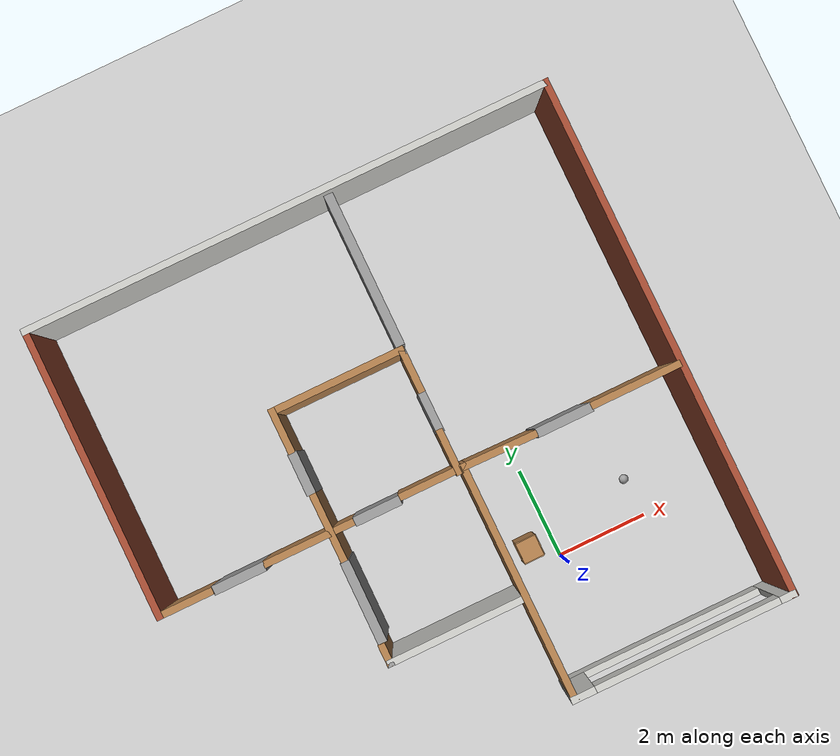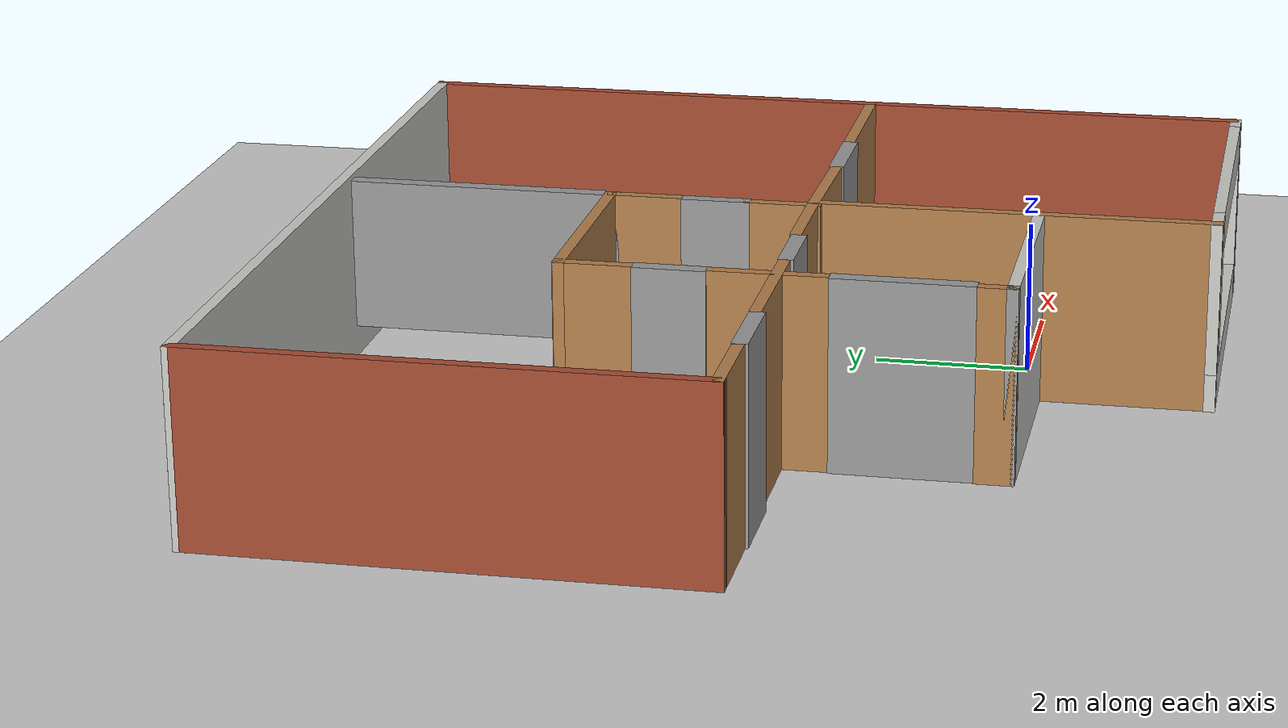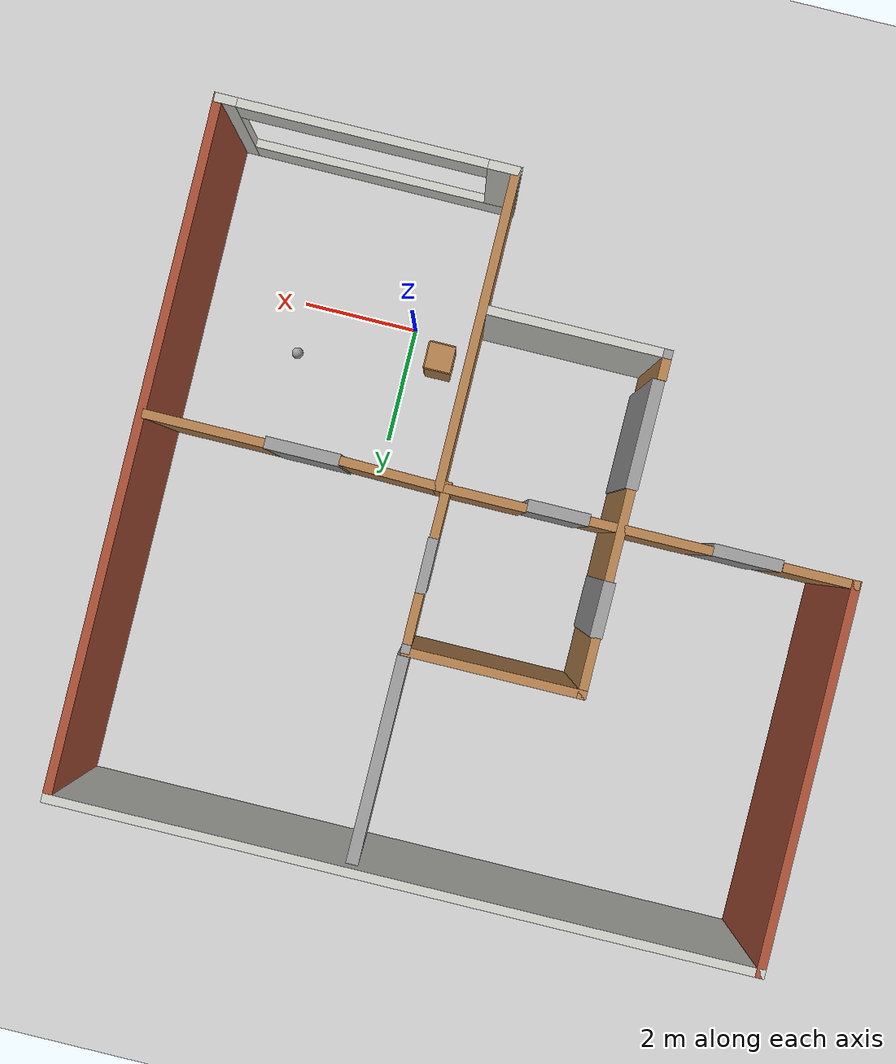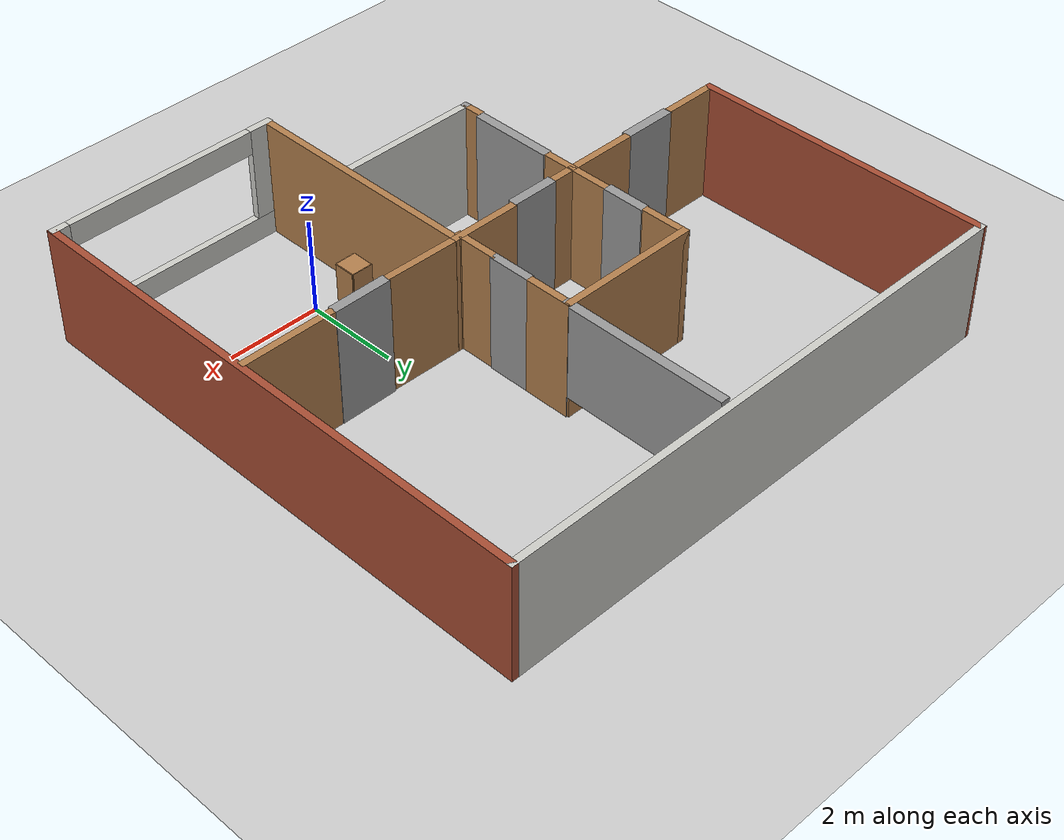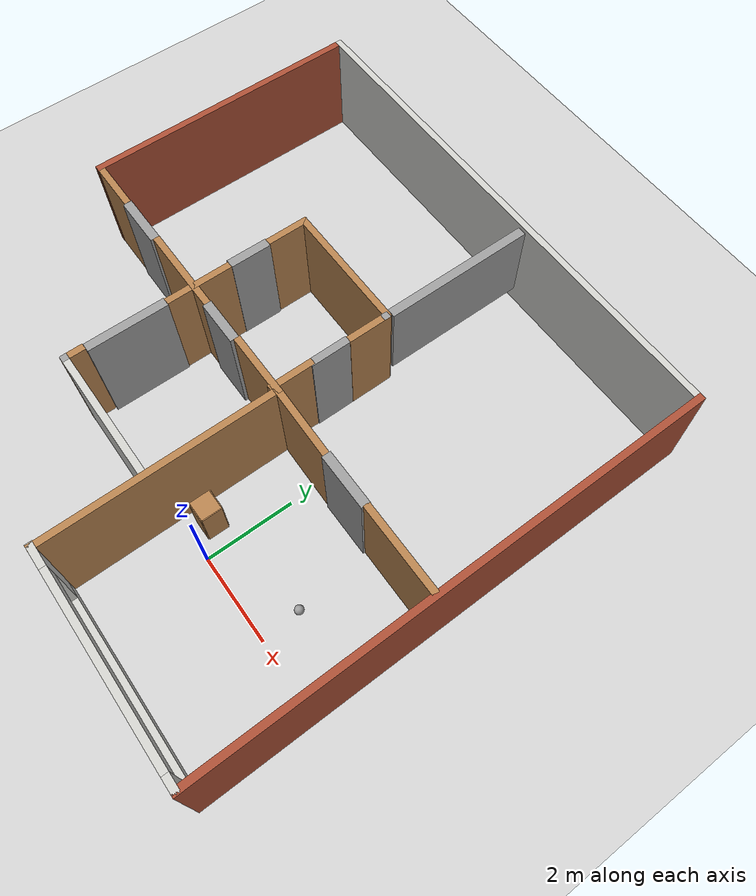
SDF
<sdf version="1.6">
 <world name="default">
  <light name="sun" type="directional">
   <pose>0 0 10 0 -0 0</pose>
   <diffuse>0.8 0.8 0.8 1</diffuse>
   <specular>0.2 0.2 0.2 1</specular>
   <attenuation>
    <range>1000</range>
    <constant>0.9</constant>
    <linear>0.01</linear>
    <quadratic>0.001</quadratic>
   </attenuation>
   <direction>-0.5 0.1 -0.9</direction>
  </light>
  <model name="ground_plane">
   <static>1</static>
   <link name="link">
    <collision name="collision">
     <geometry><plane><normal>0 0 1</normal><size>100 100</size></plane></geometry>
     <surface><friction><ode><mu>100</mu><mu2>50</mu2></ode></friction></surface>
    </collision>
    <visual name="visual">
     <cast_shadows>0</cast_shadows>
     <geometry><plane><normal>0 0 1</normal><size>100 100</size></plane></geometry>
     <material>
      <script><uri>file://media/materials/scripts/gazebo.material</uri><name>Gazebo/Grey</name></script>
     </material>
    </visual>
   </link>
  </model>
  <gravity>0 0 -9.8</gravity>
  <magnetic_field>6e-06 2.3e-05 -4.2e-05</magnetic_field>
  <atmosphere type="adiabatic"/>
  <physics name="default_physics" default="0" type="ode">
   <max_step_size>0.001</max_step_size>
   <real_time_factor>1</real_time_factor>
   <real_time_update_rate>1000</real_time_update_rate>
  </physics>
  <scene><ambient>0.4 0.4 0.4 1</ambient><background>0.7 0.7 0.7 1</background><shadows>1</shadows></scene>
  <spherical_coordinates>
   <surface_model>EARTH_WGS84</surface_model>
   <latitude_deg>0</latitude_deg>
   <longitude_deg>0</longitude_deg>
   <elevation>0</elevation>
   <heading_deg>0</heading_deg>
  </spherical_coordinates>
  <model name="home1">
   <pose>-2.0652 3.24147 0 0 -0 0</pose>
   <link name="Door_4">
    <collision name="Door_4_Collision">
     <geometry><box><size>1.227 0.2 2.5</size></box></geometry>
     <pose>0 0 1.25 0 -0 0</pose>
    </collision>
    <visual name="Door_4_Visual">
     <pose>0 0 1.25 0 -0 0</pose>
     <geometry><box><size>1.227 0.2 2.5</size></box></geometry>
     <material>
      <script><uri>file://media/materials/scripts/gazebo.material</uri><name>Gazebo/Grey</name></script>
     </material>
    </visual>
    <pose>3.18606 -0.587439 0 0 -0 0</pose>
   </link>
   <link name="Door_5">
    <collision name="Door_5_Collision">
     <geometry><box><size>1.786 0.2 2.5</size></box></geometry>
     <pose>0 0 1.25 0 -0 0</pose>
    </collision>
    <visual name="Door_5_Visual">
     <pose>0 0 1.25 0 -0 0</pose>
     <geometry><box><size>1.786 0.2 2.5</size></box></geometry>
     <material>
      <script><uri>file://media/materials/scripts/gazebo.material</uri><name>Gazebo/Grey</name></script>
     </material>
    </visual>
    <pose>-2.00622 -2.13043 0 0 0 -1.57582</pose>
   </link>
   <link name="Door_6">
    <collision name="Door_6_Collision">
     <geometry><box><size>0.921 0.2 2.5</size></box></geometry>
     <pose>0 0 1.25 0 -0 0</pose>
    </collision>
    <visual name="Door_6_Visual">
     <pose>0 0 1.25 0 -0 0</pose>
     <geometry><box><size>0.921 0.2 2.5</size></box></geometry>
     <material>
      <script><uri>file://media/materials/scripts/gazebo.material</uri><name>Gazebo/Grey</name></script>
     </material>
    </visual>
    <pose>-2.01467 0.717735 0 0 0 -1.57766</pose>
   </link>
   <link name="Door_7">
    <collision name="Door_7_Collision">
     <geometry><box><size>1.017 0.2 2.5</size></box></geometry>
     <pose>0 0 1.25 0 -0 0</pose>
    </collision>
    <visual name="Door_7_Visual">
     <pose>0 0 1.25 0 -0 0</pose>
     <geometry><box><size>1.017 0.2 2.5</size></box></geometry>
     <material>
      <script><uri>file://media/materials/scripts/gazebo.material</uri><name>Gazebo/Grey</name></script>
     </material>
    </visual>
    <pose>-0.973485 -0.608385 0 0 -0 0</pose>
   </link>
   <link name="Door_8">
    <collision name="Door_8_Collision">
     <geometry><box><size>0.9 0.17 2.5</size></box></geometry>
     <pose>0 0 1.25 0 -0 0</pose>
    </collision>
    <visual name="Door_8_Visual">
     <pose>0 0 1.25 0 -0 0</pose>
     <geometry><box><size>0.9 0.17 2.5</size></box></geometry>
     <material>
      <script><uri>file://media/materials/scripts/gazebo.material</uri><name>Gazebo/Grey</name></script>
     </material>
    </visual>
    <pose>0.846124 0.700588 0 0 -0 1.57428</pose>
   </link>
   <link name="Door_9">
    <collision name="Door_9_Collision">
     <geometry><box><size>1.14 0.2 2.5</size></box></geometry>
     <pose>0 0 1.25 0 -0 0</pose>
    </collision>
    <visual name="Door_9_Visual">
     <pose>0 0 1.25 0 -0 0</pose>
     <geometry><box><size>1.14 0.2 2.5</size></box></geometry>
     <material>
      <script><uri>file://media/materials/scripts/gazebo.material</uri><name>Gazebo/Grey</name></script>
     </material>
    </visual>
    <pose>-4.04114 -0.626154 0 0 -0 0</pose>
   </link>
   <link name="Wall_32">
    <collision name="Wall_32_Collision">
     <geometry><box><size>0.15 0.15 2.5</size></box></geometry>
     <pose>0 0 1.25 0 -0 0</pose>
    </collision>
    <visual name="Wall_32_Visual">
     <pose>0 0 1.25 0 -0 0</pose>
     <geometry><box><size>0.15 0.15 2.5</size></box></geometry>
     <material>
      <script><uri>file://media/materials/scripts/gazebo.material</uri><name>Gazebo/Grey</name></script>
      <ambient>1 1 1 1</ambient>
     </material>
     <meta><layer>0</layer></meta>
    </visual>
    <pose>0.857514 2.05405 0 0 -0 0</pose>
   </link>
   <link name="Wall_39">
    <collision name="Wall_39_Collision">
     <geometry><box><size>11.75 0.15 2.5</size></box></geometry>
     <pose>0 0 1.25 0 -0 0</pose>
    </collision>
    <visual name="Wall_39_Visual">
     <pose>0 0 1.25 0 -0 0</pose>
     <geometry><box><size>11.75 0.15 2.5</size></box></geometry>
     <material>
      <script><uri>file://media/materials/scripts/gazebo.material</uri><name>Gazebo/CeilingTiled</name></script>
      <ambient>1 1 1 1</ambient>
     </material>
     <meta><layer>0</layer></meta>
    </visual>
    <pose>0.007271 5.69142 0 0 -0 0</pose>
   </link>
   <link name="Wall_40">
    <collision name="Wall_40_Collision">
     <geometry><box><size>11.5328 0.15 2.5</size></box></geometry>
     <pose>0 0 1.25 0 -0 0</pose>
    </collision>
    <visual name="Wall_40_Visual">
     <pose>0 0 1.25 0 -0 0</pose>
     <geometry><box><size>11.5328 0.15 2.5</size></box></geometry>
     <material>
      <script><uri>file://media/materials/scripts/gazebo.material</uri><name>Gazebo/Bricks</name></script>
      <ambient>1 1 1 1</ambient>
     </material>
     <meta><layer>0</layer></meta>
    </visual>
    <pose>5.80727 7.7e-05 0 0 0 -1.5708</pose>
   </link>
   <link name="Wall_41">
    <pose>3.36593 -5.69126 0 0 -0 3.14159</pose>
    <visual name="Wall_41_Visual_0">
     <pose>-2.31849 0 1.25 0 -0 0</pose>
     <geometry><box><size>0.363017 0.15 2.5</size></box></geometry>
     <material>
      <script><uri>file://media/materials/scripts/gazebo.material</uri><name>Gazebo/CeilingTiled</name></script>
      <ambient>1 1 1 1</ambient>
     </material>
     <meta><layer>0</layer></meta>
    </visual>
    <collision name="Wall_41_Collision_0">
     <geometry><box><size>0.363017 0.15 2.5</size></box></geometry>
     <pose>-2.31849 0 1.25 0 -0 0</pose>
    </collision>
    <visual name="Wall_41_Visual_1">
     <pose>0.181509 0 0.25 0 -0 0</pose>
     <geometry><box><size>4.63698 0.15 0.5</size></box></geometry>
     <material>
      <script><uri>file://media/materials/scripts/gazebo.material</uri><name>Gazebo/CeilingTiled</name></script>
      <ambient>1 1 1 1</ambient>
     </material>
     <meta><layer>0</layer></meta>
    </visual>
    <collision name="Wall_41_Collision_1">
     <geometry><box><size>4.63698 0.15 0.5</size></box></geometry>
     <pose>0.181509 0 0.25 0 -0 0</pose>
    </collision>
    <visual name="Wall_41_Visual_2">
     <pose>2.22651 0 1.5 0 -0 0</pose>
     <geometry><box><size>0.546983 0.15 2</size></box></geometry>
     <material>
      <script><uri>file://media/materials/scripts/gazebo.material</uri><name>Gazebo/CeilingTiled</name></script>
      <ambient>1 1 1 1</ambient>
     </material>
     <meta><layer>0</layer></meta>
    </visual>
    <collision name="Wall_41_Collision_2">
     <geometry><box><size>0.546983 0.15 2</size></box></geometry>
     <pose>2.22651 0 1.5 0 -0 0</pose>
    </collision>
    <visual name="Wall_41_Visual_3">
     <pose>-0.091983 0 2.25 0 -0 0</pose>
     <geometry><box><size>4.09 0.15 0.5</size></box></geometry>
     <material>
      <script><uri>file://media/materials/scripts/gazebo.material</uri><name>Gazebo/CeilingTiled</name></script>
      <ambient>1 1 1 1</ambient>
     </material>
     <meta><layer>0</layer></meta>
    </visual>
    <collision name="Wall_41_Collision_3">
     <geometry><box><size>4.09 0.15 0.5</size></box></geometry>
     <pose>-0.091983 0 2.25 0 -0 0</pose>
    </collision>
   </link>
   <link name="Wall_43">
    <collision name="Wall_43_Collision">
     <geometry><box><size>5.28333 0.15 2.5</size></box></geometry>
     <pose>0 0 1.25 0 -0 0</pose>
    </collision>
    <visual name="Wall_43_Visual">
     <pose>0 0 1.25 0 -0 0</pose>
     <geometry><box><size>5.28333 0.15 2.5</size></box></geometry>
     <material>
      <script><uri>file://media/materials/scripts/gazebo.material</uri><name>Gazebo/Wood</name></script>
      <ambient>1 1 1 1</ambient>
     </material>
     <meta><layer>0</layer></meta>
    </visual>
    <pose>0.957271 -3.12492 0 0 -0 1.5708</pose>
   </link>
   <link name="Wall_45">
    <collision name="Wall_45_Collision">
     <geometry><box><size>2 0.15 2.5</size></box></geometry>
     <pose>0 0 1.25 0 -0 0</pose>
    </collision>
    <visual name="Wall_45_Visual">
     <pose>0 0 1.25 0 -0 0</pose>
     <geometry><box><size>2 0.15 2.5</size></box></geometry>
     <material>
      <script><uri>file://media/materials/scripts/gazebo.material</uri><name>Gazebo/Wood</name></script>
      <ambient>1 1 1 1</ambient>
     </material>
     <meta><layer>0</layer></meta>
    </visual>
    <pose>4.78492 -0.570515 0 0 -0 0</pose>
   </link>
   <link name="Wall_47">
    <collision name="Wall_47_Collision">
     <geometry><box><size>1.69896 0.15 2.5</size></box></geometry>
     <pose>0 0 1.25 0 -0 0</pose>
    </collision>
    <visual name="Wall_47_Visual">
     <pose>0 0 1.25 0 -0 0</pose>
     <geometry><box><size>1.69896 0.15 2.5</size></box></geometry>
     <material>
      <script><uri>file://media/materials/scripts/gazebo.material</uri><name>Gazebo/Wood</name></script>
      <ambient>1 1 1 1</ambient>
     </material>
     <meta><layer>0</layer></meta>
    </visual>
    <pose>1.73162 -0.572906 0 0 -0 3.1231</pose>
   </link>
   <link name="Wall_49">
    <collision name="Wall_49_Collision">
     <geometry><box><size>1.5 0.15 2.5</size></box></geometry>
     <pose>0 0 1.25 0 -0 0</pose>
    </collision>
    <visual name="Wall_49_Visual">
     <pose>0 0 1.25 0 -0 0</pose>
     <geometry><box><size>1.5 0.15 2.5</size></box></geometry>
     <material>
      <script><uri>file://media/materials/scripts/gazebo.material</uri><name>Gazebo/Wood</name></script>
      <ambient>1 1 1 1</ambient>
     </material>
     <meta><layer>0</layer></meta>
    </visual>
    <pose>0.282271 -0.558582 0 0 -0 3.14159</pose>
   </link>
   <link name="Wall_51">
    <collision name="Wall_51_Collision">
     <geometry><box><size>2 0.15 2.5</size></box></geometry>
     <pose>0 0 1.25 0 -0 0</pose>
    </collision>
    <visual name="Wall_51_Visual">
     <pose>0 0 1.25 0 -0 0</pose>
     <geometry><box><size>2 0.15 2.5</size></box></geometry>
     <material>
      <script><uri>file://media/materials/scripts/gazebo.material</uri><name>Gazebo/Wood</name></script>
      <ambient>1 1 1 1</ambient>
     </material>
     <meta><layer>0</layer></meta>
    </visual>
    <pose>-2.48375 -0.597052 0 0 -0 3.14159</pose>
   </link>
   <link name="Wall_62">
    <collision name="Wall_62_Collision">
     <geometry><box><size>1 0.15 2.5</size></box></geometry>
     <pose>0 0 1.25 0 -0 0</pose>
    </collision>
    <visual name="Wall_62_Visual">
     <pose>0 0 1.25 0 -0 0</pose>
     <geometry><box><size>1 0.15 2.5</size></box></geometry>
     <material>
      <script><uri>file://media/materials/scripts/gazebo.material</uri><name>Gazebo/Wood</name></script>
      <ambient>1 1 1 1</ambient>
     </material>
     <meta><layer>0</layer></meta>
    </visual>
    <pose>-2.01494 1.66637 0 0 -0 1.5708</pose>
   </link>
   <link name="Wall_63">
    <collision name="Wall_63_Collision">
     <geometry><box><size>3 0.15 2.5</size></box></geometry>
     <pose>0 0 1.25 0 -0 0</pose>
    </collision>
    <visual name="Wall_63_Visual">
     <pose>0 0 1.25 0 -0 0</pose>
     <geometry><box><size>3 0.15 2.5</size></box></geometry>
     <material>
      <script><uri>file://media/materials/scripts/gazebo.material</uri><name>Gazebo/Wood</name></script>
      <ambient>1 1 1 1</ambient>
     </material>
     <meta><layer>0</layer></meta>
    </visual>
    <pose>-0.589941 2.09137 0 0 -0 0</pose>
   </link>
   <link name="Wall_65">
    <collision name="Wall_65_Collision">
     <geometry><box><size>6.4569 0.15 2.5</size></box></geometry>
     <pose>0 0 1.25 0 -0 0</pose>
    </collision>
    <visual name="Wall_65_Visual">
     <pose>0 0 1.25 0 -0 0</pose>
     <geometry><box><size>6.4569 0.15 2.5</size></box></geometry>
     <material>
      <script><uri>file://media/materials/scripts/gazebo.material</uri><name>Gazebo/Bricks</name></script>
      <ambient>1 1 1 1</ambient>
     </material>
     <meta><layer>0</layer></meta>
    </visual>
    <pose>-5.79992 2.53798 0 0 0 -1.57308</pose>
   </link>
   <link name="Wall_66">
    <collision name="Wall_66_Collision">
     <geometry><box><size>1.25 0.15 2.5</size></box></geometry>
     <pose>0 0 1.25 0 -0 0</pose>
    </collision>
    <visual name="Wall_66_Visual">
     <pose>0 0 1.25 0 -0 0</pose>
     <geometry><box><size>1.25 0.15 2.5</size></box></geometry>
     <material>
      <script><uri>file://media/materials/scripts/gazebo.material</uri><name>Gazebo/Wood</name></script>
      <ambient>1 1 1 1</ambient>
     </material>
     <meta><layer>0</layer></meta>
    </visual>
    <pose>-5.24273 -0.615467 0 0 -0 0</pose>
   </link>
   <link name="Wall_68">
    <collision name="Wall_68_Collision">
     <geometry><box><size>1.5 0.15 2.5</size></box></geometry>
     <pose>0 0 1.25 0 -0 0</pose>
    </collision>
    <visual name="Wall_68_Visual">
     <pose>0 0 1.25 0 -0 0</pose>
     <geometry><box><size>1.5 0.15 2.5</size></box></geometry>
     <material>
      <script><uri>file://media/materials/scripts/gazebo.material</uri><name>Gazebo/Wood</name></script>
      <ambient>1 1 1 1</ambient>
     </material>
     <meta><layer>0</layer></meta>
    </visual>
    <pose>-2.00109 -0.485154 0 0 0 -1.5708</pose>
   </link>
   <link name="Wall_70">
    <collision name="Wall_70_Collision">
     <geometry><box><size>3 0.15 2.5</size></box></geometry>
     <pose>0 0 1.25 0 -0 0</pose>
    </collision>
    <visual name="Wall_70_Visual">
     <pose>0 0 1.25 0 -0 0</pose>
     <geometry><box><size>3 0.15 2.5</size></box></geometry>
     <material>
      <script><uri>file://media/materials/scripts/gazebo.material</uri><name>Gazebo/CeilingTiled</name></script>
      <ambient>1 1 1 1</ambient>
     </material>
     <meta><layer>0</layer></meta>
    </visual>
    <pose>-0.616744 -3.45007 0 0 -0 3.14159</pose>
   </link>
   <link name="Wall_71">
    <collision name="Wall_71_Collision">
     <geometry><box><size>0.15 0.15 2.5</size></box></geometry>
     <pose>0 0 1.25 0 -0 0</pose>
    </collision>
    <visual name="Wall_71_Visual">
     <pose>0 0 1.25 0 -0 0</pose>
     <geometry><box><size>0.15 0.15 2.5</size></box></geometry>
     <material>
      <script><uri>file://media/materials/scripts/gazebo.material</uri><name>Gazebo/Grey</name></script>
      <ambient>1 1 1 1</ambient>
     </material>
     <meta><layer>0</layer></meta>
    </visual>
    <pose>-2.0541 -3.45007 0 0 -0 0</pose>
   </link>
   <link name="Wall_72">
    <collision name="Wall_72_Collision">
     <geometry><box><size>0.15 0.15 2.5</size></box></geometry>
     <pose>0 0 1.25 0 -0 0</pose>
    </collision>
    <visual name="Wall_72_Visual">
     <pose>0 0 1.25 0 -0 0</pose>
     <geometry><box><size>0.15 0.15 2.5</size></box></geometry>
     <material>
      <script><uri>file://media/materials/scripts/gazebo.material</uri><name>Gazebo/Grey</name></script>
      <ambient>1 1 1 1</ambient>
     </material>
     <meta><layer>0</layer></meta>
    </visual>
    <pose>-2.0541 -3.45007 0 0 -0 0</pose>
   </link>
   <link name="Wall_73">
    <collision name="Wall_73_Collision">
     <geometry><box><size>0.15 0.15 2.5</size></box></geometry>
     <pose>0 0 1.25 0 -0 0</pose>
    </collision>
    <visual name="Wall_73_Visual">
     <pose>0 0 1.25 0 -0 0</pose>
     <geometry><box><size>0.15 0.15 2.5</size></box></geometry>
     <material>
      <script><uri>file://media/materials/scripts/gazebo.material</uri><name>Gazebo/Grey</name></script>
      <ambient>1 1 1 1</ambient>
     </material>
     <meta><layer>0</layer></meta>
    </visual>
    <pose>-2.0541 -3.45007 0 0 -0 0</pose>
   </link>
   <link name="Wall_74">
    <collision name="Wall_74_Collision">
     <geometry><box><size>0.15 0.15 2.5</size></box></geometry>
     <pose>0 0 1.25 0 -0 0</pose>
    </collision>
    <visual name="Wall_74_Visual">
     <pose>0 0 1.25 0 -0 0</pose>
     <geometry><box><size>0.15 0.15 2.5</size></box></geometry>
     <material>
      <script><uri>file://media/materials/scripts/gazebo.material</uri><name>Gazebo/Grey</name></script>
      <ambient>1 1 1 1</ambient>
     </material>
     <meta><layer>0</layer></meta>
    </visual>
    <pose>-2.0541 -3.45007 0 0 -0 0</pose>
   </link>
   <link name="Wall_79">
    <collision name="Wall_79_Collision">
     <geometry><box><size>0.5 0.15 2.5</size></box></geometry>
     <pose>0 0 1.25 0 -0 0</pose>
    </collision>
    <visual name="Wall_79_Visual">
     <pose>0 0 1.25 0 -0 0</pose>
     <geometry><box><size>0.5 0.15 2.5</size></box></geometry>
     <material>
      <script><uri>file://media/materials/scripts/gazebo.material</uri><name>Gazebo/Wood</name></script>
      <ambient>1 1 1 1</ambient>
     </material>
     <meta><layer>0</layer></meta>
    </visual>
    <pose>-2.0541 -3.27507 0 0 -0 1.5708</pose>
   </link>
   <link name="Wall_83">
    <collision name="Wall_83_Collision">
     <geometry><box><size>0.988 0.15 2.5</size></box></geometry>
     <pose>0 0 1.25 0 -0 0</pose>
    </collision>
    <visual name="Wall_83_Visual">
     <pose>0 0 1.25 0 -0 0</pose>
     <geometry><box><size>0.988 0.15 2.5</size></box></geometry>
     <material>
      <script><uri>file://media/materials/scripts/gazebo.material</uri><name>Gazebo/Wood</name></script>
      <ambient>1 1 1 1</ambient>
     </material>
     <meta><layer>0</layer></meta>
    </visual>
    <pose>0.857514 1.63505 0 0 0 -1.5708</pose>
   </link>
   <link name="Wall_85">
    <collision name="Wall_85_Collision">
     <geometry><box><size>1 0.15 2.5</size></box></geometry>
     <pose>0 0 1.25 0 -0 0</pose>
    </collision>
    <visual name="Wall_85_Visual">
     <pose>0 0 1.25 0 -0 0</pose>
     <geometry><box><size>1 0.15 2.5</size></box></geometry>
     <material>
      <script><uri>file://media/materials/scripts/gazebo.material</uri><name>Gazebo/Wood</name></script>
      <ambient>1 1 1 1</ambient>
     </material>
     <meta><layer>0</layer></meta>
    </visual>
    <pose>0.837954 -0.170598 0 0 0 -1.5708</pose>
   </link>
   <link name="Window_5">
    <collision name="Window_5_Collision">
     <geometry><box><size>3.38 0.2 2</size></box></geometry>
     <pose>0 0 1 0 -0 0</pose>
    </collision>
    <visual name="Window_5_Visual">
     <pose>0 0 1 0 -0 0</pose>
     <geometry><box><size>3.38 0.2 2</size></box></geometry>
     <material>
      <script><uri>file://media/materials/scripts/gazebo.material</uri><name>Gazebo/Grey</name></script>
     </material>
    </visual>
    <pose>0.872553 3.85924 0.5 0 -0 1.56746</pose>
   </link>
   <static>1</static>
  </model>
  <model name="my_ball">
   <link name="link_0">
    <inertial>
     <mass>1</mass>
     <inertia><ixx>0.1</ixx><ixy>0</ixy><ixz>0</ixz><iyy>0.1</iyy><iyz>0</iyz><izz>0.1</izz></inertia>
    </inertial>
    <visual name="visual">
     <geometry><sphere><radius>0.1</radius></sphere></geometry>
     <material>
      <lighting>1</lighting>
      <script><uri>file://media/materials/scripts/gazebo.material</uri><name>Gazebo/Grey</name></script>
      <shader type="pixel"><normal_map>__default__</normal_map></shader>
      <ambient>1 1 1 1</ambient>
      <diffuse>1 1 1 1</diffuse>
      <specular>1 1 1 1</specular>
      <emissive>1 1 1 1</emissive>
     </material>
    </visual>
    <collision name="collision">
     <geometry><sphere><radius>0.1</radius></sphere></geometry>
     <surface>
      <friction>
       <ode><mu>1</mu><mu2>1</mu2><fdir1>0 0 0</fdir1><slip1>0</slip1><slip2>0</slip2></ode>
       <torsional>
        <coefficient>1</coefficient>
        <patch_radius>0</patch_radius>
        <surface_radius>0</surface_radius>
        <use_patch_radius>1</use_patch_radius>
        <ode><slip>0</slip></ode>
       </torsional>
      </friction>
      <bounce><restitution_coefficient>0</restitution_coefficient><threshold>1e+06</threshold></bounce>
      <contact>
       <collide_without_contact>0</collide_without_contact>
       <collide_without_contact_bitmask>1</collide_without_contact_bitmask>
       <collide_bitmask>1</collide_bitmask>
       <ode>
        <soft_cfm>0</soft_cfm>
        <soft_erp>0.2</soft_erp>
        <kp>1e+13</kp>
        <kd>1</kd>
        <max_vel>0.01</max_vel>
        <min_depth>0</min_depth>
       </ode>
       <bullet>
        <split_impulse>1</split_impulse>
        <split_impulse_penetration_threshold>-0.01</split_impulse_penetration_threshold>
        <soft_cfm>0</soft_cfm>
        <soft_erp>0.2</soft_erp>
        <kp>1e+13</kp>
        <kd>1</kd>
       </bullet>
      </contact>
     </surface>
    </collision>
   </link>
   <static>0</static>
   <pose>1.93139 0.890317 0.1 0 -0 0</pose>
  </model>
  <model name="cabinet">
   <static>1</static>
   <link name="cabinet_bottom_plate">
    <inertial>
     <pose>0 0 -1 0 -0 0</pose>
     <inertia><ixx>2.05</ixx><ixy>0</ixy><ixz>0</ixz><iyy>2.05</iyy><iyz>0</iyz><izz>2.05</izz></inertia>
     <mass>25</mass>
    </inertial>
    <collision name="cabinet_bottom_plate_geom">
     <pose>0 0 0.01 0 -0 0</pose>
     <geometry><box><size>0.45 0.45 0.02</size></box></geometry>
    </collision>
    <visual name="cabinet_bottom_plate_geom_visual">
     <pose>0 0 0.01 0 -0 0</pose>
     <geometry><box><size>0.45 0.45 0.02</size></box></geometry>
     <material>
      <script><uri>file://media/materials/scripts/gazebo.material</uri><name>Gazebo/Wood</name></script>
     </material>
    </visual>
    <collision name="cabinet_bottom_plate_geom_cabinet_back_plate">
     <pose>0.235 0 0.51 0 -0 0</pose>
     <geometry><box><size>0.02 0.45 1.02</size></box></geometry>
    </collision>
    <visual name="cabinet_bottom_plate_geom_cabinet_back_plate_visual">
     <pose>0.235 0 0.51 0 -0 0</pose>
     <geometry><box><size>0.02 0.45 1.02</size></box></geometry>
     <material>
      <script><uri>file://media/materials/scripts/gazebo.material</uri><name>Gazebo/Wood</name></script>
     </material>
    </visual>
    <collision name="cabinet_bottom_plate_geom_cabinet_left_plate">
     <pose>0 0.235 0.51 0 -0 0</pose>
     <geometry><box><size>0.45 0.02 1.02</size></box></geometry>
    </collision>
    <visual name="cabinet_bottom_plate_geom_cabinet_left_plate_visual">
     <pose>0 0.235 0.51 0 -0 0</pose>
     <geometry><box><size>0.45 0.02 1.02</size></box></geometry>
     <material>
      <script><uri>file://media/materials/scripts/gazebo.material</uri><name>Gazebo/Wood</name></script>
     </material>
    </visual>
    <collision name="cabinet_bottom_plate_geom_cabinet_middle_plate">
     <pose>0 0 0.51 0 -0 0</pose>
     <geometry><box><size>0.45 0.45 0.02</size></box></geometry>
    </collision>
    <visual name="cabinet_bottom_plate_geom_cabinet_middle_plate_visual">
     <pose>0 0 0.51 0 -0 0</pose>
     <geometry><box><size>0.45 0.45 0.02</size></box></geometry>
     <material>
      <script><uri>file://media/materials/scripts/gazebo.material</uri><name>Gazebo/Wood</name></script>
     </material>
    </visual>
    <collision name="cabinet_bottom_plate_geom_cabinet_right_plate">
     <pose>0 -0.235 0.51 0 -0 0</pose>
     <geometry><box><size>0.45 0.02 1.02</size></box></geometry>
    </collision>
    <visual name="cabinet_bottom_plate_geom_cabinet_right_plate_visual">
     <pose>0 -0.235 0.51 0 -0 0</pose>
     <geometry><box><size>0.45 0.02 1.02</size></box></geometry>
     <material>
      <script><uri>file://media/materials/scripts/gazebo.material</uri><name>Gazebo/Wood</name></script>
     </material>
    </visual>
    <collision name="cabinet_bottom_plate_geom_cabinet_top_plate">
     <pose>0 0 1.01 0 -0 0</pose>
     <geometry><box><size>0.45 0.45 0.02</size></box></geometry>
    </collision>
    <visual name="cabinet_bottom_plate_geom_cabinet_top_plate_visual">
     <pose>0 0 1.01 0 -0 0</pose>
     <geometry><box><size>0.45 0.45 0.02</size></box></geometry>
     <material>
      <script><uri>file://media/materials/scripts/gazebo.material</uri><name>Gazebo/Wood</name></script>
     </material>
    </visual>
   </link>
   <pose>-0.57217 0.491409 0 0 -0 0</pose>
  </model>
 </world>
</sdf>
